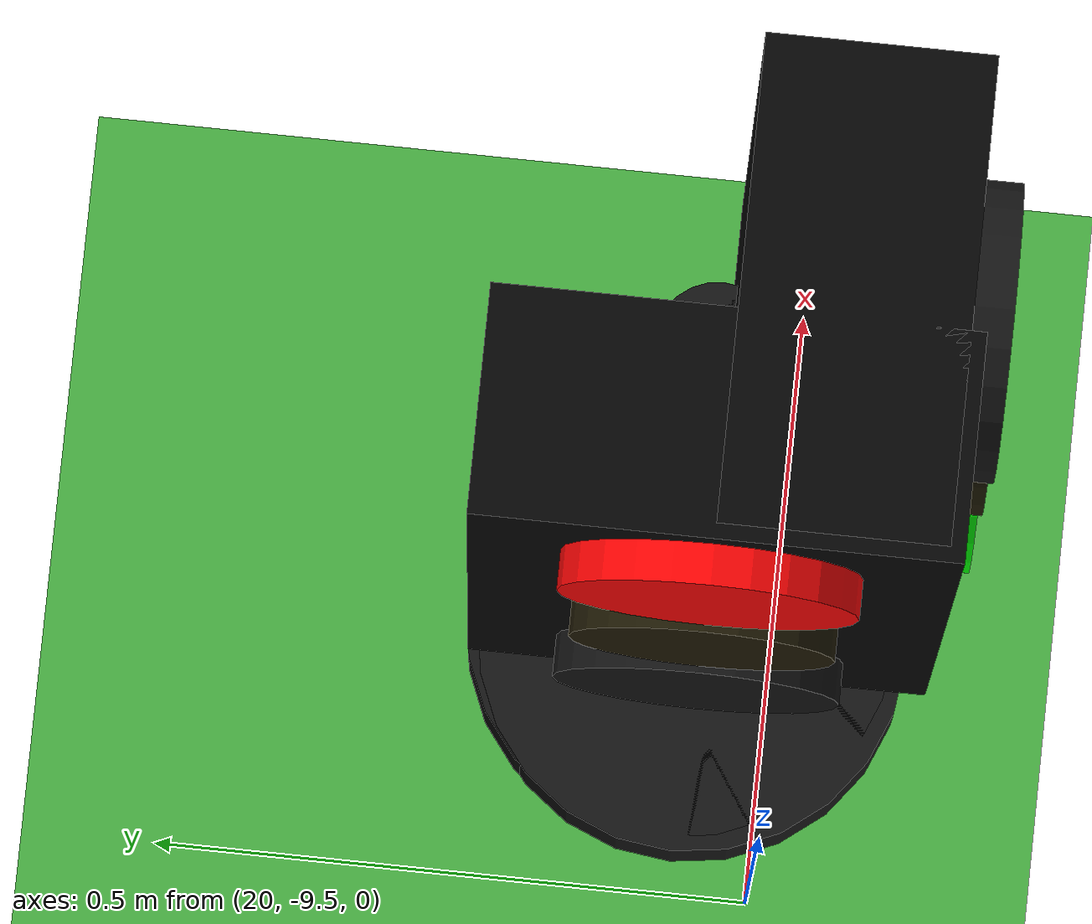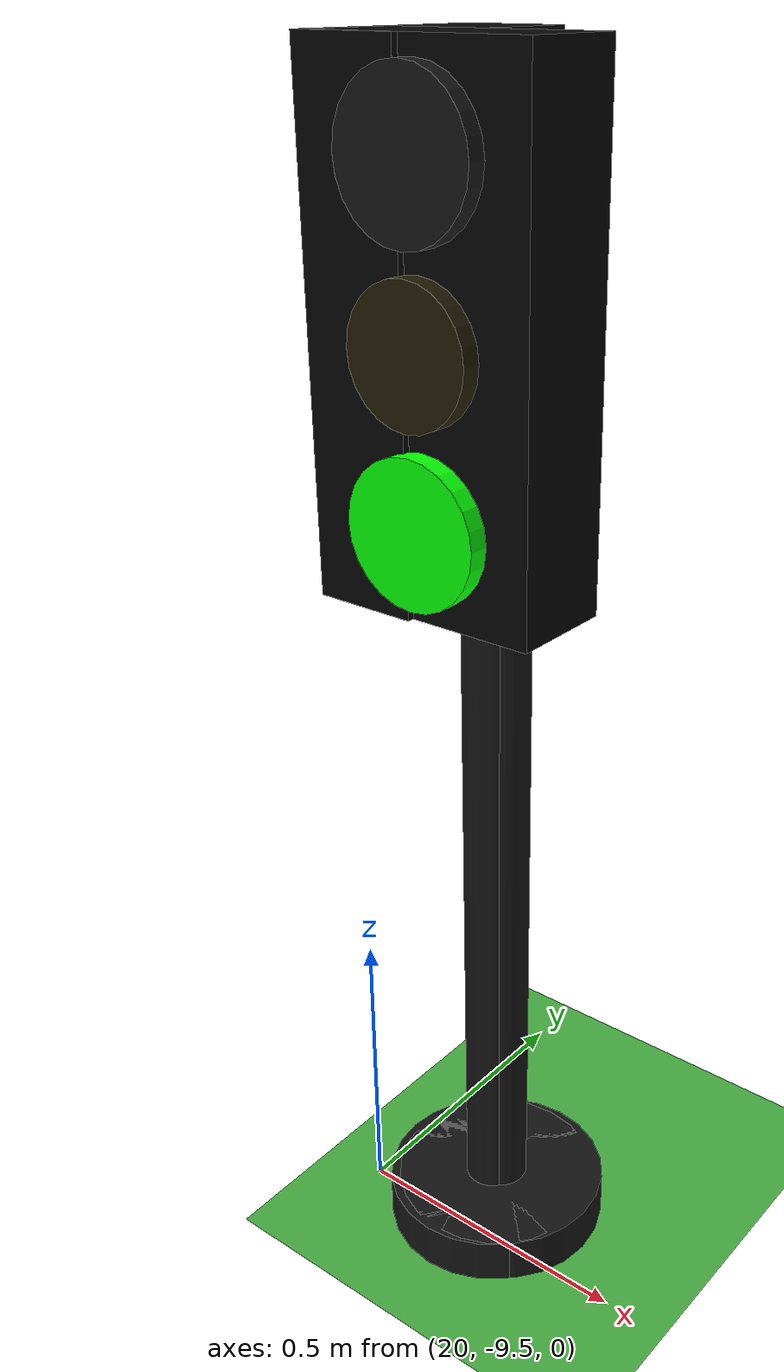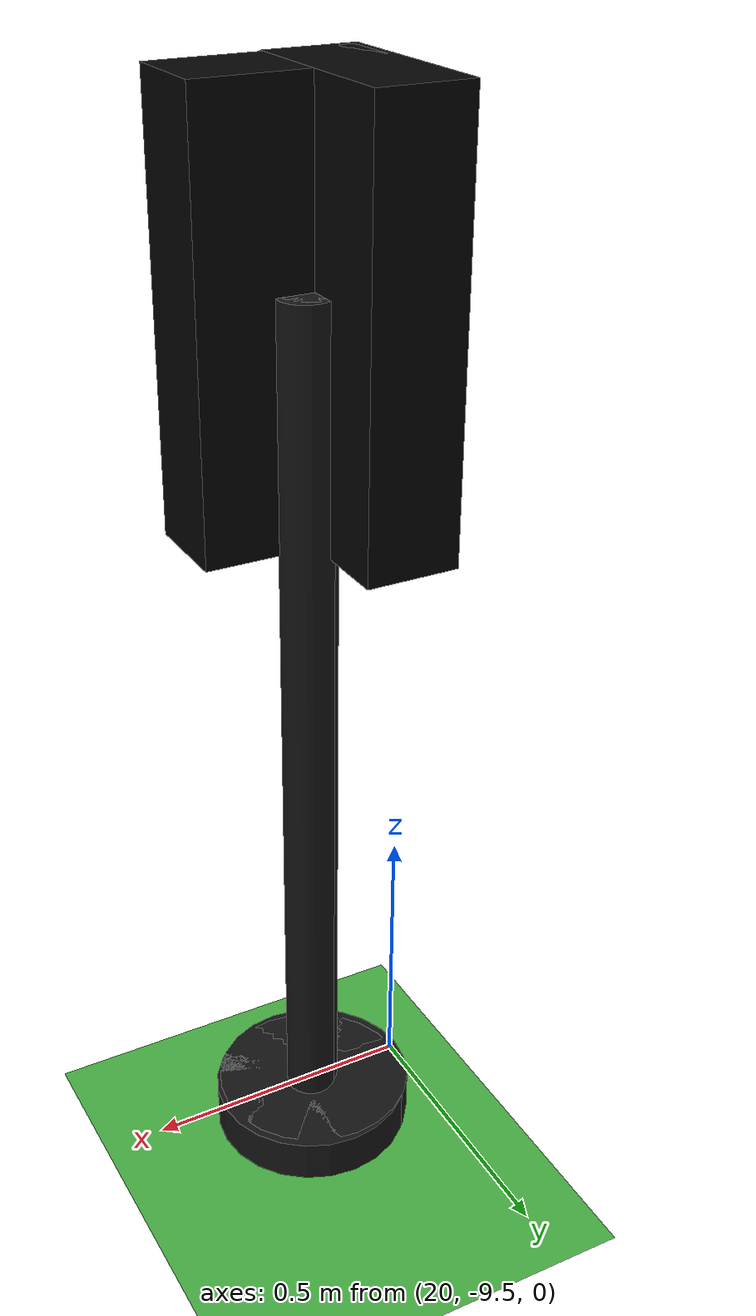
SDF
<sdf version="1.10">
 <world name="city_second">
  <model name="ground_plane">
   <static>true</static>
   <link name="link">
    <collision name="collision">
     <geometry><plane><normal>0 0 1</normal><size>300 300</size></plane></geometry>
    </collision>
    <visual name="visual">
     <geometry><plane><normal>0 0 1</normal><size>300 300</size></plane></geometry>
     <material>
      <ambient>0.280000001 0.689999998 0.25999999 1</ambient>
      <diffuse>0.280000001 0.689999998 0.25999999 1</diffuse>
      <specular>0.0299999993 0.0299999993 0.0299999993 1</specular>
     </material>
    </visual>
    <inertial>
     <mass>1</mass>
     <inertia><ixx>1</ixx><ixy>0</ixy><ixz>0</ixz><iyy>1</iyy><iyz>0</iyz><izz>1</izz></inertia>
    </inertial>
   </link>
  </model>
  <model name="simple_traffic_light_red_west_2">
   <static>true</static>
   <pose>20.209085163271727 -9.432895705974973 -1.3877787807814457e-17 0 0 1.5707999672671711</pose>
   <link name="base">
    <pose>0 0 0.040000000000000001 0 0 0</pose>
    <collision name="collision">
     <geometry>
      <cylinder><radius>0.17999999999999999</radius><length>0.080000000000000002</length></cylinder>
     </geometry>
    </collision>
    <visual name="visual">
     <geometry>
      <cylinder><radius>0.17999999999999999</radius><length>0.080000000000000002</length></cylinder>
     </geometry>
     <material>
      <ambient>0.0799999982 0.0799999982 0.0799999982 1</ambient>
      <diffuse>0.0799999982 0.0799999982 0.0799999982 1</diffuse>
      <specular>0.150000006 0.150000006 0.150000006 1</specular>
      <emissive>0 0 0 1</emissive>
     </material>
    </visual>
    <inertial>
     <mass>1</mass>
     <inertia><ixx>1</ixx><ixy>0</ixy><ixz>0</ixz><iyy>1</iyy><iyz>0</iyz><izz>1</izz></inertia>
    </inertial>
   </link>
   <link name="pole">
    <pose>-3.5527136788005009e-15 -3.5527136788005009e-15 0.80000000000000004 0 0 3.3306690738754696e-16</pose>
    <collision name="collision">
     <geometry>
      <cylinder><radius>0.044999999999999998</radius><length>1.6000000000000001</length></cylinder>
     </geometry>
    </collision>
    <visual name="visual">
     <geometry>
      <cylinder><radius>0.044999999999999998</radius><length>1.6000000000000001</length></cylinder>
     </geometry>
     <material>
      <ambient>0.0799999982 0.0799999982 0.0799999982 1</ambient>
      <diffuse>0.0799999982 0.0799999982 0.0799999982 1</diffuse>
      <specular>0.150000006 0.150000006 0.150000006 1</specular>
      <emissive>0 0 0 1</emissive>
     </material>
    </visual>
    <inertial>
     <mass>1</mass>
     <inertia><ixx>1</ixx><ixy>0</ixy><ixz>0</ixz><iyy>1</iyy><iyz>0</iyz><izz>1</izz></inertia>
    </inertial>
   </link>
   <link name="signal_box">
    <pose>-1.0658141036401503e-14 0.089999999999999858 1.5500000000000003 0 0 3.3306690738754696e-16</pose>
    <collision name="collision">
     <geometry><box><size>0.34000000000000002 0.16 0.71999999999999997</size></box></geometry>
    </collision>
    <visual name="visual">
     <geometry><box><size>0.34000000000000002 0.16 0.71999999999999997</size></box></geometry>
     <material>
      <ambient>0.0199999996 0.0199999996 0.0199999996 1</ambient>
      <diffuse>0.0199999996 0.0199999996 0.0199999996 1</diffuse>
      <specular>0.150000006 0.150000006 0.150000006 1</specular>
      <emissive>0 0 0 1</emissive>
     </material>
    </visual>
    <inertial>
     <mass>1</mass>
     <inertia><ixx>1</ixx><ixy>0</ixy><ixz>0</ixz><iyy>1</iyy><iyz>0</iyz><izz>1</izz></inertia>
    </inertial>
   </link>
   <link name="red_lens">
    <pose>0 0.18100000000000094 1.78 1.5707963267999998 -7.8504622930783579e-17 -1.3345785898814093e-15</pose>
    <collision name="collision">
     <geometry><cylinder><radius>0.105</radius><length>0.035000000000000003</length></cylinder></geometry>
    </collision>
    <visual name="visual">
     <geometry><cylinder><radius>0.105</radius><length>0.035000000000000003</length></cylinder></geometry>
     <material>
      <ambient>1 0.0199999996 0.0199999996 1</ambient>
      <diffuse>1 0.0199999996 0.0199999996 1</diffuse>
      <specular>0.150000006 0.150000006 0.150000006 1</specular>
      <emissive>1 0.0199999996 0.0199999996 1</emissive>
     </material>
    </visual>
    <inertial>
     <mass>1</mass>
     <inertia><ixx>1</ixx><ixy>0</ixy><ixz>0</ixz><iyy>1</iyy><iyz>0</iyz><izz>1</izz></inertia>
    </inertial>
   </link>
   <link name="yellow_lens">
    <pose>-8.8817841970012523e-15 0.18200000000000216 1.5500000000000003 1.5707963267999998 -7.8504622930783579e-17 -1.3345785898814093e-15</pose>
    <collision name="collision">
     <geometry>
      <cylinder><radius>0.095000000000000001</radius><length>0.035000000000000003</length></cylinder>
     </geometry>
    </collision>
    <visual name="visual">
     <geometry>
      <cylinder><radius>0.095000000000000001</radius><length>0.035000000000000003</length></cylinder>
     </geometry>
     <material>
      <ambient>0.119999997 0.100000001 0.0199999996 1</ambient>
      <diffuse>0.119999997 0.100000001 0.0199999996 1</diffuse>
      <specular>0.150000006 0.150000006 0.150000006 1</specular>
      <emissive>0 0 0 1</emissive>
     </material>
    </visual>
    <inertial>
     <mass>1</mass>
     <inertia><ixx>1</ixx><ixy>0</ixy><ixz>0</ixz><iyy>1</iyy><iyz>0</iyz><izz>1</izz></inertia>
    </inertial>
   </link>
   <link name="green_lens">
    <pose>-3.5527136788005009e-15 0.18300000000000338 1.3199999999999998 1.5707963267999998 -7.8504622930783579e-17 -1.3345785898814093e-15</pose>
    <collision name="collision">
     <geometry><cylinder><radius>0.105</radius><length>0.035000000000000003</length></cylinder></geometry>
    </collision>
    <visual name="visual">
     <geometry><cylinder><radius>0.105</radius><length>0.035000000000000003</length></cylinder></geometry>
     <material>
      <ambient>0.0799999982 0.0799999982 0.0799999982 1</ambient>
      <diffuse>0.0799999982 0.0799999982 0.0799999982 1</diffuse>
      <specular>0.150000006 0.150000006 0.150000006 1</specular>
      <emissive>0 0 0 1</emissive>
     </material>
    </visual>
    <inertial>
     <mass>1</mass>
     <inertia><ixx>1</ixx><ixy>0</ixy><ixz>0</ixz><iyy>1</iyy><iyz>0</iyz><izz>1</izz></inertia>
    </inertial>
   </link>
  </model>
  <model name="simple_traffic_light_green_south_1_2">
   <static>true</static>
   <pose>20.220117694941631 -9.4223803089731213 0 0 0 -3.1415900000000754</pose>
   <link name="base">
    <pose>0 0 0.040000000000000001 0 0 0</pose>
    <collision name="collision">
     <geometry>
      <cylinder><radius>0.17999999999999999</radius><length>0.080000000000000002</length></cylinder>
     </geometry>
    </collision>
    <visual name="visual">
     <geometry>
      <cylinder><radius>0.17999999999999999</radius><length>0.080000000000000002</length></cylinder>
     </geometry>
     <material>
      <ambient>0.0799999982 0.0799999982 0.0799999982 1</ambient>
      <diffuse>0.0799999982 0.0799999982 0.0799999982 1</diffuse>
      <specular>0.150000006 0.150000006 0.150000006 1</specular>
      <emissive>0 0 0 1</emissive>
     </material>
    </visual>
    <inertial>
     <mass>1</mass>
     <inertia><ixx>1</ixx><ixy>0</ixy><ixz>0</ixz><iyy>1</iyy><iyz>0</iyz><izz>1</izz></inertia>
    </inertial>
   </link>
   <link name="pole">
    <pose>-3.5527136788005009e-15 1.7763568394002505e-15 0.80000000000000016 0 0 0</pose>
    <collision name="collision">
     <geometry>
      <cylinder><radius>0.044999999999999998</radius><length>1.6000000000000001</length></cylinder>
     </geometry>
    </collision>
    <visual name="visual">
     <geometry>
      <cylinder><radius>0.044999999999999998</radius><length>1.6000000000000001</length></cylinder>
     </geometry>
     <material>
      <ambient>0.0799999982 0.0799999982 0.0799999982 1</ambient>
      <diffuse>0.0799999982 0.0799999982 0.0799999982 1</diffuse>
      <specular>0.150000006 0.150000006 0.150000006 1</specular>
      <emissive>0 0 0 1</emissive>
     </material>
    </visual>
    <inertial>
     <mass>1</mass>
     <inertia><ixx>1</ixx><ixy>0</ixy><ixz>0</ixz><iyy>1</iyy><iyz>0</iyz><izz>1</izz></inertia>
    </inertial>
   </link>
   <link name="signal_box">
    <pose>0 0.090000000000005187 1.5500000000000003 0 0 0</pose>
    <collision name="collision">
     <geometry><box><size>0.34000000000000002 0.16 0.71999999999999997</size></box></geometry>
    </collision>
    <visual name="visual">
     <geometry><box><size>0.34000000000000002 0.16 0.71999999999999997</size></box></geometry>
     <material>
      <ambient>0.0199999996 0.0199999996 0.0199999996 1</ambient>
      <diffuse>0.0199999996 0.0199999996 0.0199999996 1</diffuse>
      <specular>0.150000006 0.150000006 0.150000006 1</specular>
      <emissive>0 0 0 1</emissive>
     </material>
    </visual>
    <inertial>
     <mass>1</mass>
     <inertia><ixx>1</ixx><ixy>0</ixy><ixz>0</ixz><iyy>1</iyy><iyz>0</iyz><izz>1</izz></inertia>
    </inertial>
   </link>
   <link name="red_lens">
    <pose>-3.5527136788005009e-15 0.18100000000000449 1.78 1.5707963267999998 1.2475048931562623e-16 -1.2475078878636004e-16</pose>
    <collision name="collision">
     <geometry><cylinder><radius>0.105</radius><length>0.035000000000000003</length></cylinder></geometry>
    </collision>
    <visual name="visual">
     <geometry><cylinder><radius>0.105</radius><length>0.035000000000000003</length></cylinder></geometry>
     <material>
      <ambient>0.0799999982 0.0799999982 0.0799999982 1</ambient>
      <diffuse>0.0799999982 0.0799999982 0.0799999982 1</diffuse>
      <specular>0.150000006 0.150000006 0.150000006 1</specular>
      <emissive>0 0 0 1</emissive>
     </material>
    </visual>
    <inertial>
     <mass>1</mass>
     <inertia><ixx>1</ixx><ixy>0</ixy><ixz>0</ixz><iyy>1</iyy><iyz>0</iyz><izz>1</izz></inertia>
    </inertial>
   </link>
   <link name="yellow_lens">
    <pose>0 0.18200000000000216 1.5500000000000003 1.5707963267999998 1.2475048931562623e-16 -1.2475078878636004e-16</pose>
    <collision name="collision">
     <geometry>
      <cylinder><radius>0.095000000000000001</radius><length>0.035000000000000003</length></cylinder>
     </geometry>
    </collision>
    <visual name="visual">
     <geometry>
      <cylinder><radius>0.095000000000000001</radius><length>0.035000000000000003</length></cylinder>
     </geometry>
     <material>
      <ambient>0.119999997 0.100000001 0.0199999996 1</ambient>
      <diffuse>0.119999997 0.100000001 0.0199999996 1</diffuse>
      <specular>0.150000006 0.150000006 0.150000006 1</specular>
      <emissive>0 0 0 1</emissive>
     </material>
    </visual>
    <inertial>
     <mass>1</mass>
     <inertia><ixx>1</ixx><ixy>0</ixy><ixz>0</ixz><iyy>1</iyy><iyz>0</iyz><izz>1</izz></inertia>
    </inertial>
   </link>
   <link name="green_lens">
    <pose>-3.5527136788005009e-15 0.18300000000000338 1.3200000000000003 1.5707963267999998 1.2475048931562623e-16 -1.2475078878636004e-16</pose>
    <collision name="collision">
     <geometry><cylinder><radius>0.105</radius><length>0.035000000000000003</length></cylinder></geometry>
    </collision>
    <visual name="visual">
     <geometry><cylinder><radius>0.105</radius><length>0.035000000000000003</length></cylinder></geometry>
     <material>
      <ambient>0.0199999996 1 0.0199999996 1</ambient>
      <diffuse>0.0199999996 1 0.0199999996 1</diffuse>
      <specular>0.150000006 0.150000006 0.150000006 1</specular>
      <emissive>0.0199999996 1 0.0199999996 1</emissive>
     </material>
    </visual>
    <inertial>
     <mass>1</mass>
     <inertia><ixx>1</ixx><ixy>0</ixy><ixz>0</ixz><iyy>1</iyy><iyz>0</iyz><izz>1</izz></inertia>
    </inertial>
   </link>
  </model>
 </world>
</sdf>
